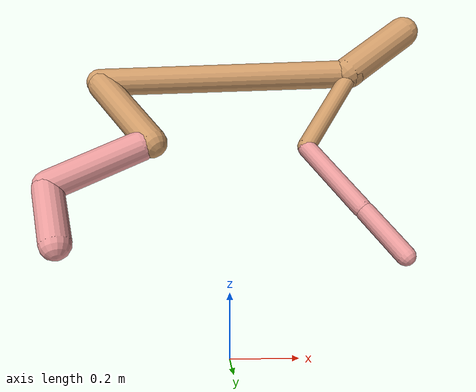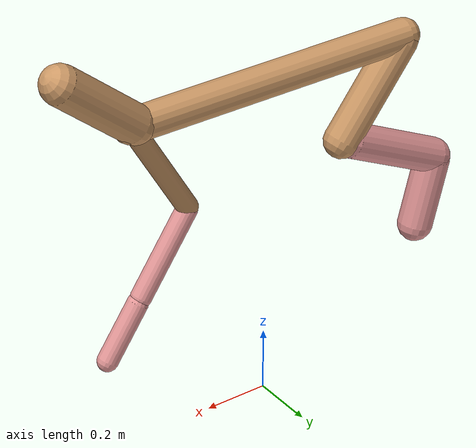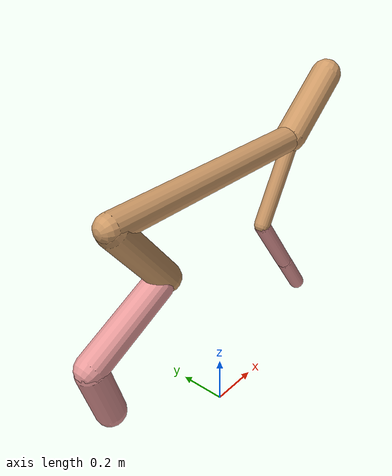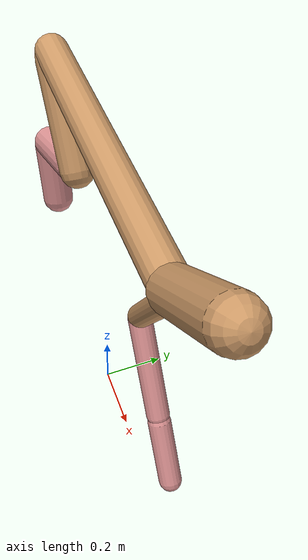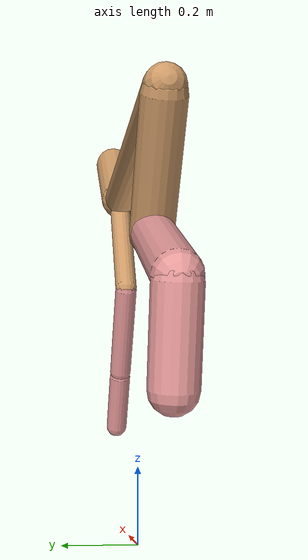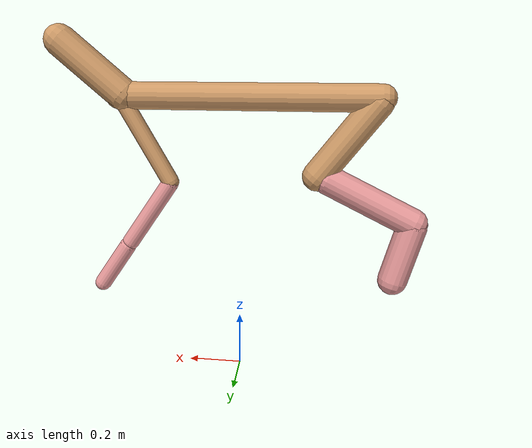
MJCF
<mujoco model="cheetah">
  <compiler angle="radian" coordinate="local" inertiafromgeom="true" settotalmass="14" />
  <default>
    <joint armature=".1" damping=".01" limited="true" solimplimit="0 .8 .03" solreflimit=".02 1" stiffness="8" />
    <geom conaffinity="0" condim="3" contype="1" friction="0.8 .1 .1" rgba="0.8 0.6 .4 1" solimp="0.0 0.8 0.01" solref="0.02 1" />
    <motor ctrllimited="true" ctrlrange="-1 1" />
  </default>
  <size nstack="300000" nuser_geom="1" />
  <option gravity="0 0 -9.81" timestep="0.01" />
  <worldbody>
    <body name="torso" pos="0.0 0.0 1.045910536578488">
      <joint armature="0" axis="1 0 0" damping="0" limited="false" name="ignorex" pos="0 0 0" stiffness="0" type="slide" />
      <joint armature="0" axis="0 0 1" damping="0" limited="false" name="ignorez" pos="0 0 0" stiffness="0" type="slide" />
      <joint armature="0" axis="0 1 0" damping="0" limited="false" name="ignorey" pos="0 0 0" stiffness="0" type="hinge" />
      <geom fromto="-0.5 0.0 0.0 0.44855750006555456 0.0 0.0" name="torso" size="0.05068816852157581" type="capsule" />
      <geom axisangle="0 1 0 .87" name="head" pos="0.5485575000655546 0.0 0.1" size="0.05957187522455965 0.15" type="capsule" />

      <body name="bthigh" pos="-.5 0 0">
        <joint axis="0 1 0" damping="6" name="bthigh" pos="0 0 0" range="-.52 1.05" stiffness="240" type="hinge" />
        <geom axisangle="0 1 0 -3.8" name="bthigh" pos="0.11502905233688439 0.0 -0.1495377680379497" size="0.05496469328452477 0.16964947857561166" type="capsule" />
        <body name="bshin" pos="0.19005810467376877 0.0 -0.28907553607589936">
          <joint axis="0 1 0" damping="4.5" name="bshin" pos="0 0 0" range="-.785 .785" stiffness="180" type="hinge" />
          <geom axisangle="0 1 0 -2.03" name="bshin" pos="-0.16280741091241063 0.0 -0.08140370545620532" rgba="0.9 0.6 0.6 1" size="0.05496469328452477 0.17549946059546034" type="capsule" />
          <body name="bfoot" pos="-0.32561482182482127 0.0 -0.16280741091241063">
            <joint axis="0 1 0" damping="3" name="bfoot" pos="0 0 0" range="-.4 .785" stiffness="120" type="hinge" />
            <geom axisangle="0 1 0 -.27" name="bfoot" pos="0.03472150629559645 0.0 -0.11226620368909519" rgba="0.9 0.6 0.6 1" size="0.05496469328452477 0.10997966197315516" type="capsule" />
            <inertial mass="10" />
          </body>
        </body>
      </body>
      <body name="fthigh" pos="0.4485575000655546 0.0 0.0">
        <joint axis="0 1 0" damping="4.5" name="fthigh" pos="0 0 0" range="-1.5 0.8" stiffness="180" type="hinge" />
        <geom axisangle="0 1 0 .52" name="fthigh" pos="-0.09424805593631469 0.0 -0.16156809589082516" size="0.0322 0.18112353699261394" type="capsule" />
        <body name="fshin" pos="-0.18849611187262938 0.0 -0.3231361917816503">
          <joint axis="0 1 0" damping="3" name="fshin" pos="0 0 0" range="-1.2 1.1" stiffness="120" type="hinge" />
          <geom axisangle="0 1 0 -.6" name="fshin" pos="0.08745596158372955 0.0 -0.12109286988516399" rgba="0.9 0.6 0.6 1" size="0.0322 0.1443540971520081" type="capsule" />
          <body name="ffoot" pos="0.1749119231674591 0.0 -0.24218573977032798">
            <joint axis="0 1 0" damping="1.5" name="ffoot" pos="0 0 0" range="-3.1 -0.3" stiffness="60" type="hinge" />
            <geom axisangle="0 1 0 -.6" name="ffoot" pos="0.05869640418400629 0.0 -0.09130551761956536" rgba="0.9 0.6 0.6 1" size="0.0322 0.09532817736453365" type="capsule" />
            <inertial mass="10" />
          </body>
        </body>
      </body>
    </body>
  </worldbody>
  <actuator>
    <motor gear="120" joint="bthigh" name="bthigh" />
    <motor gear="90" joint="bshin" name="bshin" />
    <motor gear="60" joint="bfoot" name="bfoot" />
    <motor gear="120" joint="fthigh" name="fthigh" />
    <motor gear="60" joint="fshin" name="fshin" />
    <motor gear="30" joint="ffoot" name="ffoot" />
  </actuator>
</mujoco>
